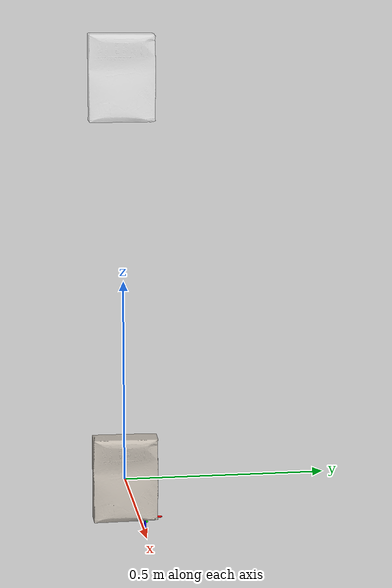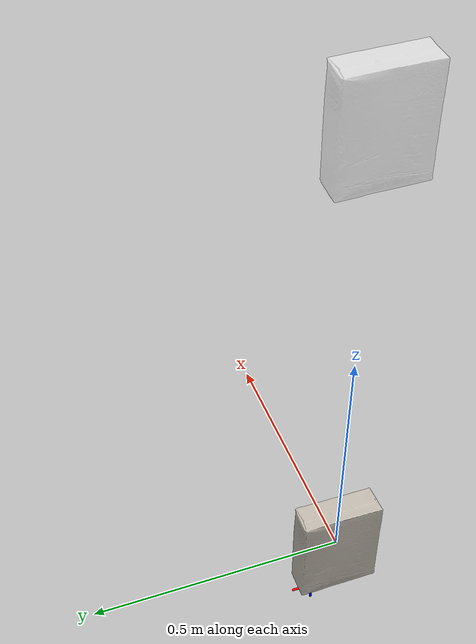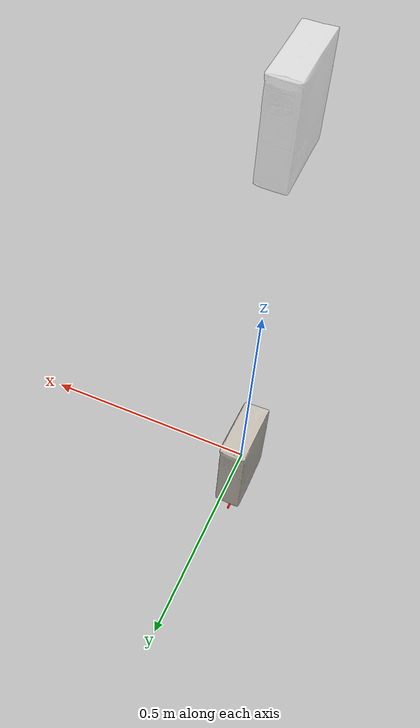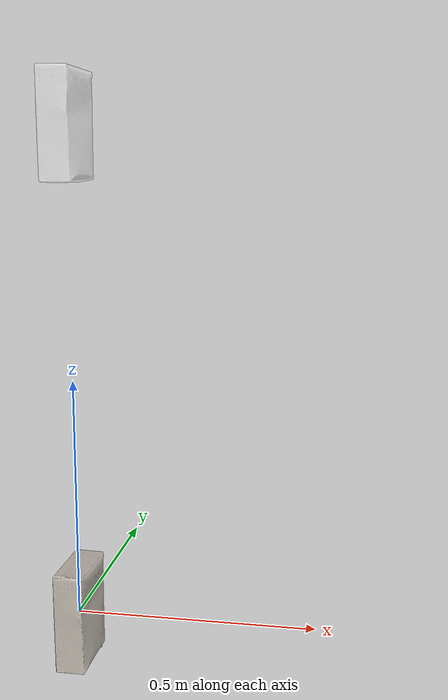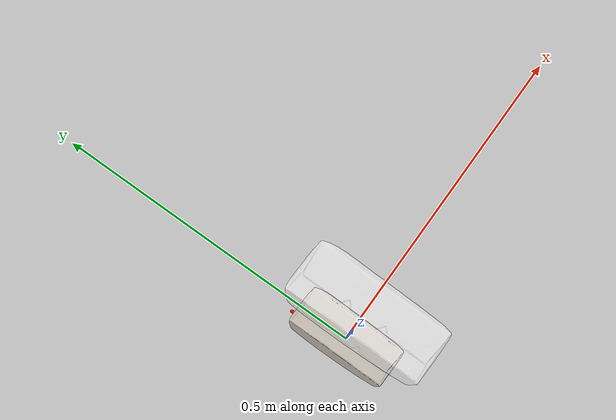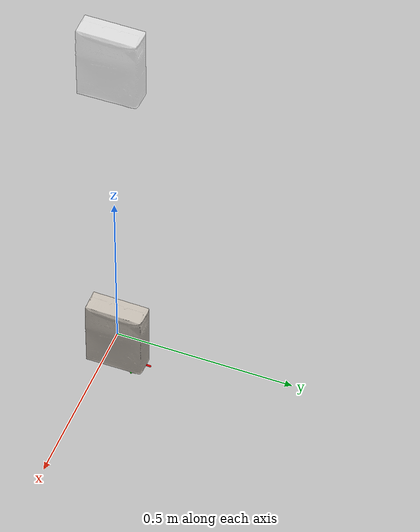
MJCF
<mujoco model="003_cracker_box">
  <compiler meshdir="assets" texturedir="assets"/>

  <default>
    <default class="ycb_visual">
      <geom group="2" type="mesh" contype="0" conaffinity="0" mass="0"/>
    </default>
    <default class="ycb_collision">
      <geom group="3" type="mesh" condim="6" priority="1" solref="0.01 1" solimp="0.99 0.999 0.001 0.5 1"/>
    </default>
  </default>

  <asset>
    <texture type="2d" name="texture_map" file="texture_map.png"/>
    <material name="material_0" texture="texture_map"/>
    <mesh file="003_cracker_box.obj"/>
  </asset>

  <worldbody>
    <body name="body">
      <inertial pos="0 0 0" mass="0.411" diaginertia="0.00239573 0.00168228 0.00099934"/>
      <joint name="joint" type='free' damping="0.005"/>
      <geom name="visual_geom" material="material_0" mesh="003_cracker_box" class="ycb_visual"/>
      <geom name="collision_geom_0" type="box" size="0.03 0.079 0.105" class="ycb_collision"/>
      <site name="barcode" group="4" rgba="1 0 0 1" pos="-0.010259 0.050995 -0.10498" quat="0 0.707107 0.707107 0"/>
      <geom name="barcode_axis_x" type="capsule" size="0.0025" fromto="-0.010259 0.050995 -0.10498 -0.010259 0.090995 -0.10498" rgba="1 0 0 1" contype="0" conaffinity="0" group="2"/>
      <geom name="barcode_axis_y" type="capsule" size="0.0025" fromto="-0.010259 0.050995 -0.10498 0.029741 0.050995 -0.10498" rgba="0 1 0 1" contype="0" conaffinity="0" group="2"/>
      <geom name="barcode_axis_z" type="capsule" size="0.0025" fromto="-0.010259 0.050995 -0.10498 -0.010259 0.050995 -0.14498" rgba="0 0 1 1" contype="0" conaffinity="0" group="2"/>
    </body>

  <body name="target_body" mocap="true" pos="0 0 1" quat="1 0 0 0">
      <geom name="target_visual_geom"
            type="mesh"
            mesh="003_cracker_box"
            material="material_0"
            contype="0" conaffinity="0"
            group="2"
            rgba="1 1 1 0.5"/>
    </body>

  </worldbody>
</mujoco>
